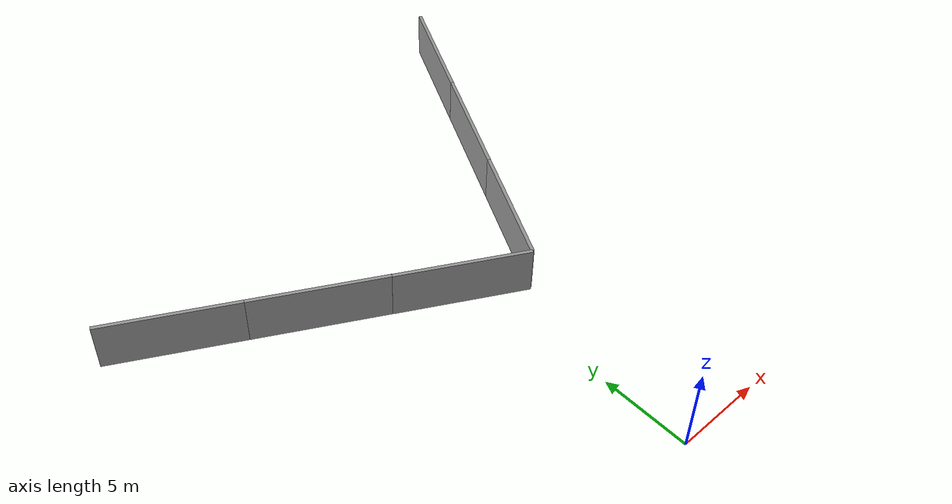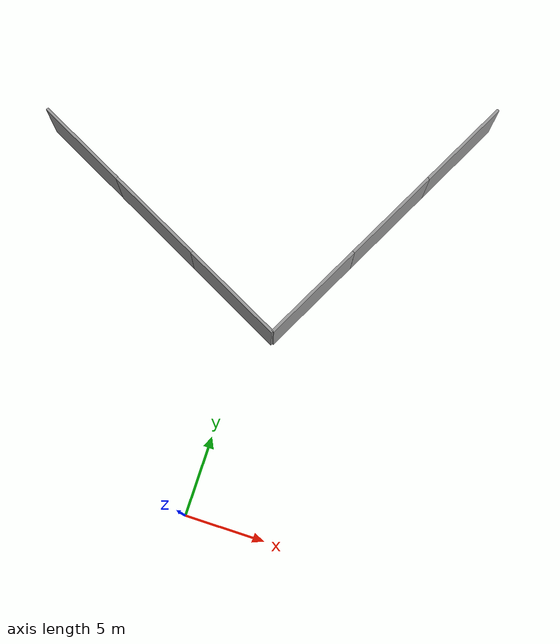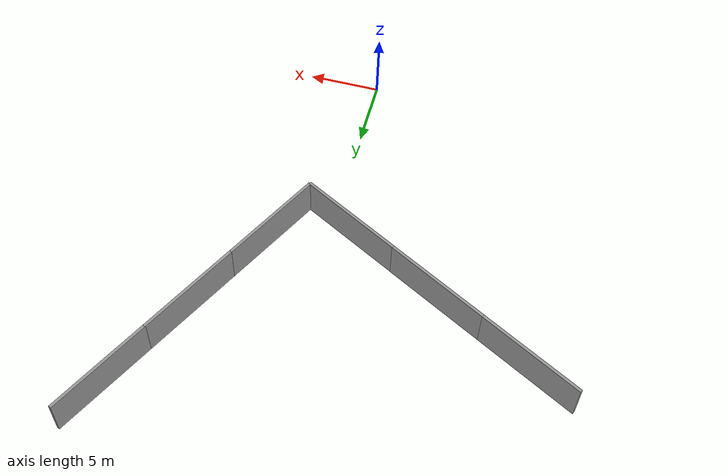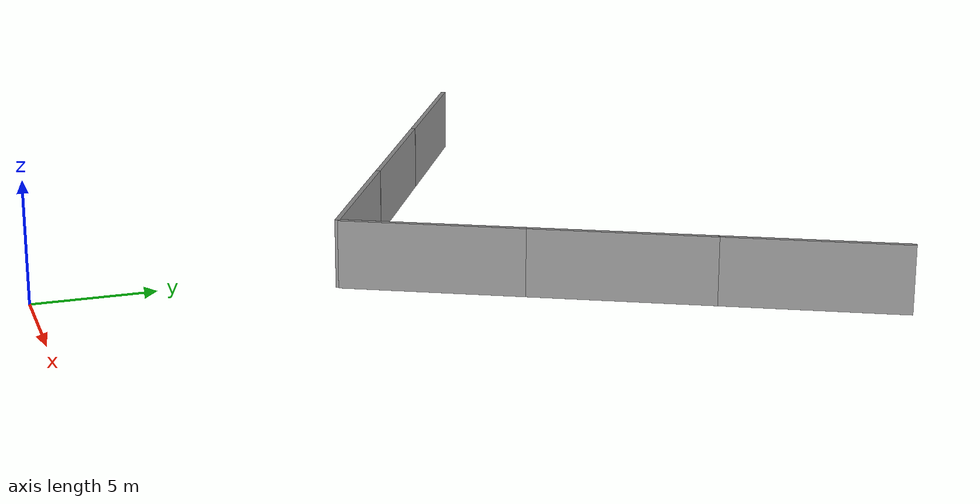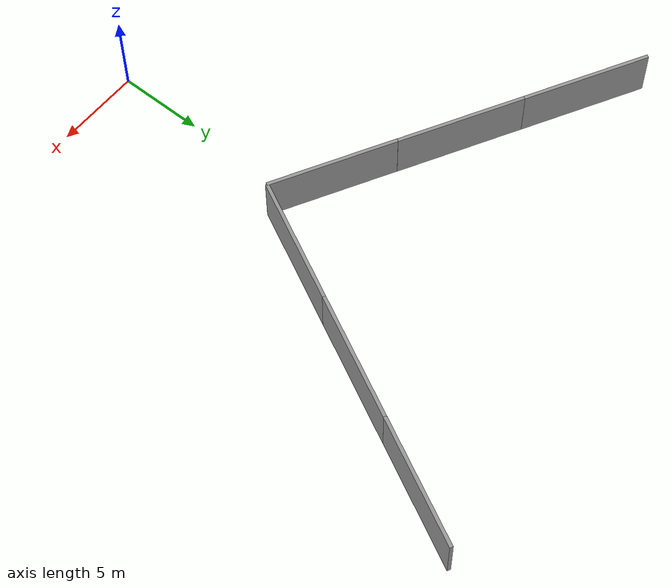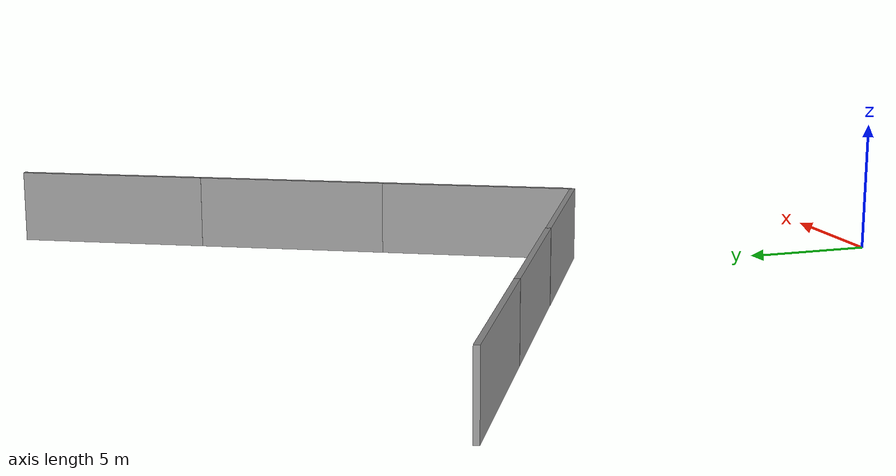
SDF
<sdf version="1.6">
 <world name="default">
  <plugin name="ros_interface_plugin" filename="librotors_gazebo_ros_interface_plugin.so"/>
  <light name="sun" type="directional">
   <pose>0 0 10 0 -0 0</pose>
   <diffuse>0.8 0.8 0.8 1</diffuse>
   <specular>0.2 0.2 0.2 1</specular>
   <attenuation>
    <range>1000</range>
    <constant>0.9</constant>
    <linear>0.01</linear>
    <quadratic>0.001</quadratic>
   </attenuation>
   <direction>-0.5 0.1 -0.9</direction>
  </light>
  <gravity>0 0 -9.8</gravity>
  <magnetic_field>6e-06 2.3e-05 -4.2e-05</magnetic_field>
  <atmosphere type="adiabatic"/>
  <physics type="ode" name="split_unthrottled3">
   <real_time_update_rate>0.0</real_time_update_rate>
   <ode>
    <solver><thread_position_correction>1</thread_position_correction><island_threads>3</island_threads></solver>
   </ode>
  </physics>
  <scene>
   <ambient>0.2 0.2 0.2 1</ambient>
   <grid>0</grid>
   <sky><clouds><speed>12</speed><humidity>100</humidity></clouds></sky>
   <background>0.7 0.7 0.7 1</background>
   <shadows>1</shadows>
  </scene>
  <spherical_coordinates>
   <surface_model>EARTH_WGS84</surface_model>
   <latitude_deg>0</latitude_deg>
   <longitude_deg>0</longitude_deg>
   <elevation>0</elevation>
   <heading_deg>0</heading_deg>
  </spherical_coordinates>
  <model name="grey_wall">
   <static>1</static>
   <link name="link">
    <pose>0 0 1.4 0 -0 0</pose>
    <collision name="collision"><geometry><box><size>7.5 0.2 2.8</size></box></geometry></collision>
    <visual name="visual">
     <cast_shadows>0</cast_shadows>
     <geometry><box><size>7.5 0.2 2.8</size></box></geometry>
     <material>
      <script>
       <uri>model://grey_wall/materials/scripts</uri>
       <uri>model://grey_wall/materials/textures</uri>
       <name>vrc/grey_wall</name>
      </script>
     </material>
    </visual>
   </link>
   <pose>-8.04426 17.3148 0 0 0 -0.5</pose>
  </model>
  <model name="grey_wall_clone">
   <static>1</static>
   <link name="link">
    <pose>0 0 1.4 0 -0 0</pose>
    <collision name="collision"><geometry><box><size>7.5 0.2 2.8</size></box></geometry></collision>
    <visual name="visual">
     <cast_shadows>0</cast_shadows>
     <geometry><box><size>7.5 0.2 2.8</size></box></geometry>
     <material>
      <script>
       <uri>model://grey_wall/materials/scripts</uri>
       <uri>model://grey_wall/materials/textures</uri>
       <name>vrc/grey_wall</name>
      </script>
     </material>
    </visual>
   </link>
   <pose>-1.48823 13.7229 0 0 0 -0.5</pose>
  </model>
  <model name="grey_wall_clone_0">
   <static>1</static>
   <link name="link">
    <pose>0 0 1.4 0 -0 0</pose>
    <collision name="collision"><geometry><box><size>7.5 0.2 2.8</size></box></geometry></collision>
    <visual name="visual">
     <cast_shadows>0</cast_shadows>
     <geometry><box><size>7.5 0.2 2.8</size></box></geometry>
     <material>
      <script>
       <uri>model://grey_wall/materials/scripts</uri>
       <uri>model://grey_wall/materials/textures</uri>
       <name>vrc/grey_wall</name>
      </script>
     </material>
    </visual>
   </link>
   <pose>-14.6048 20.9033 0 0 0 -0.5</pose>
  </model>
  <model name="grey_wall_clone_clone">
   <static>1</static>
   <link name="link">
    <pose>0 0 1.4 0 -0 0</pose>
    <collision name="collision"><geometry><box><size>7.5 0.2 2.8</size></box></geometry></collision>
    <visual name="visual">
     <cast_shadows>0</cast_shadows>
     <geometry><box><size>7.5 0.2 2.8</size></box></geometry>
     <material>
      <script>
       <uri>model://grey_wall/materials/scripts</uri>
       <uri>model://grey_wall/materials/textures</uri>
       <name>vrc/grey_wall</name>
      </script>
     </material>
    </visual>
   </link>
   <pose>3.5 15.3 0 0 -0 1.1</pose>
  </model>
  <model name="grey_wall_clone_clone_clone">
   <static>1</static>
   <link name="link">
    <pose>0 0 1.4 0 -0 0</pose>
    <collision name="collision"><geometry><box><size>7.5 0.2 2.8</size></box></geometry></collision>
    <visual name="visual">
     <cast_shadows>0</cast_shadows>
     <geometry><box><size>7.5 0.2 2.8</size></box></geometry>
     <material>
      <script>
       <uri>model://grey_wall/materials/scripts</uri>
       <uri>model://grey_wall/materials/textures</uri>
       <name>vrc/grey_wall</name>
      </script>
     </material>
    </visual>
   </link>
   <pose>6.90338 21.9817 0 0 -0 1.1</pose>
  </model>
  <model name="grey_wall_clone_clone_clone_0">
   <static>1</static>
   <link name="link">
    <pose>0 0 1.4 0 -0 0</pose>
    <collision name="collision"><geometry><box><size>7.5 0.2 2.8</size></box></geometry></collision>
    <visual name="visual">
     <cast_shadows>0</cast_shadows>
     <geometry><box><size>7.5 0.2 2.8</size></box></geometry>
     <material>
      <script>
       <uri>model://grey_wall/materials/scripts</uri>
       <uri>model://grey_wall/materials/textures</uri>
       <name>vrc/grey_wall</name>
      </script>
     </material>
    </visual>
   </link>
   <pose>10.2769 28.613 0 0 -0 1.1</pose>
  </model>
 </world>
</sdf>
